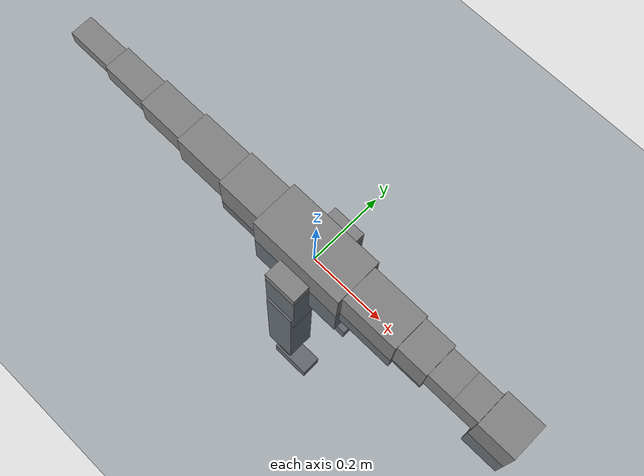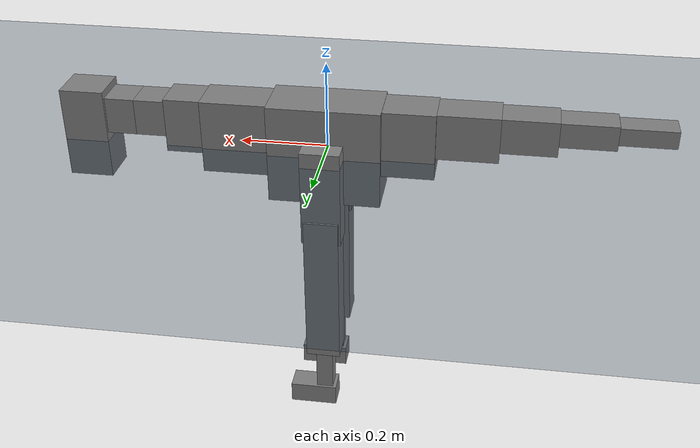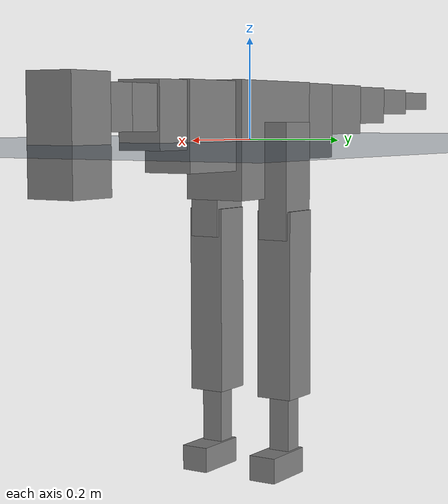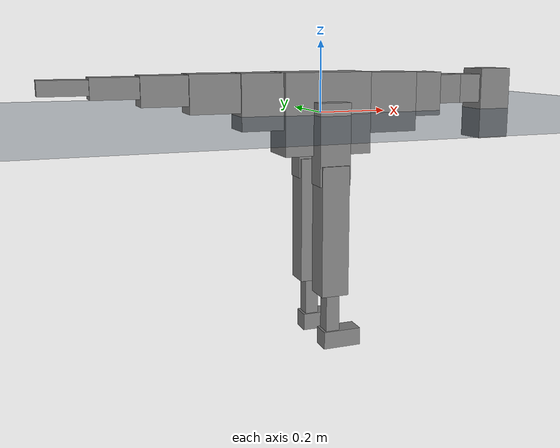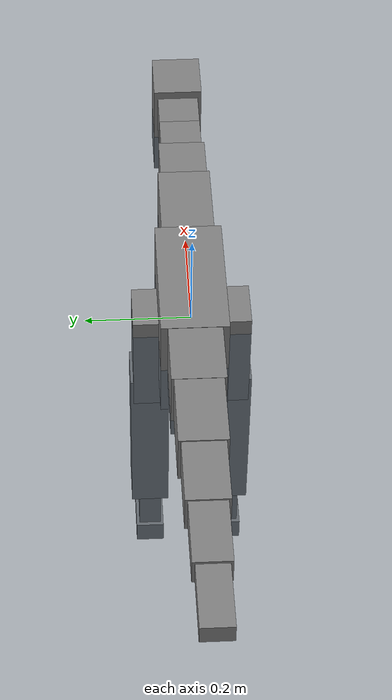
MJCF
<mujoco model="dog">

    <default>
        <joint armature="0.02" stiffness="1" damping="0.2" limited="true"/>
        <geom condim="3" friction="1 0.05 0.05" margin="0.01"/>
        <motor ctrllimited="true" ctrlrange="-1.0 1.0" forcelimited="true"/>
    </default>

    <compiler inertiafromgeom="true" angle="radian"/>

    <option timestep="0.016" iterations="50" tolerance="1e-10" solver="Newton" jacobian="dense" cone="pyramidal"/>

    <size nconmax="20000" njmax="60000" nstack="5000000"/>
    <visual>
        <map force="0.1" zfar="30"/>
        <rgba haze="0.15 0.25 0.35 1"/>
        <quality shadowsize="2048"/>
        <global offwidth="800" offheight="800"/>
    </visual>

    <asset>
        <texture type="skybox" builtin="gradient" rgb1="0.3 0.5 0.7" rgb2="0 0 0" width="512" height="512"/>
        <texture name="texplane" type="2d" builtin="checker" rgb1=".2 .3 .4" rgb2=".1 0.15 0.2" width="512" height="512"
                 mark="cross" markrgb=".8 .8 .8"/>
        <texture name="texgeom" type="cube" builtin="flat" mark="cross" width="127" height="1278" rgb1="0.8 0.6 0.4"
                 rgb2="0.8 0.6 0.4" markrgb="1 1 1" random="0.01"/>

        <material name="matplane" reflectance="0.3" texture="texplane" texrepeat="1 1" texuniform="true"/>
        <material name="matgeom" texture="texgeom" texuniform="true" rgba="0.8 0.6 .4 1"/>
    </asset>

    <worldbody>
        <geom name="floor" pos="0 0 0" size="0 0 .25" type="plane" material="matplane" condim="3"/>

        <light directional="false" diffuse=".2 .2 .2" specular="0 0 0" pos="0 0 5" dir="0 0 -1" castshadow="false"/>
        <light mode="targetbodycom" target="torso" directional="false" diffuse=".8 .8 .8" specular="0.3 0.3 0.3"
               pos="0 0 4.0" dir="0 0 -1"/>

        <body name="root" pos="0 0 0">
            <freejoint name="root_y"/>
            <geom type="box" size="0.1278 0.063 0.1147" density="2030"/>
            <body name="spine0" pos="0.1058 0 0.0777">
                <joint name="spine0_y" axis="0 1 0" range="-0.2 -0.1"/>
                <geom type="box" pos="0.0868 0 -0.05065" size="0.0868 0.05 0.085" density="1038"/>
                <body name="spine1" pos="0.1736 0 0">
                    <joint name="spine1_y" axis="0 1 0" range="-0.2 -0.1"/>
                    <geom type="box" pos="0.042 0 -0.03" size="0.0415 0.045 0.06285" density="1038"/>
                    <body name="spine2" pos="0.083 0 0">
                        <joint name="spine2_y" axis="0 1 0" range="-0.2 -0.1"/>
                        <geom type="box" pos="0.0319 0 -0.017" size="0.0394 0.04 0.0417" density="1038"/>
                        <body name="spine3" pos="0.0788 0 0">
                            <joint name="spine3_y" axis="0 1 0" range="-0.2  -0.1"/>
                            <geom type="box" pos="0.0319 0 -0.017" size="0.0394 0.04 0.0417" density="1538"/>
                            <body name="head" pos="0.0688 0 0">
                                <joint name="head_y" axis="0 1 0" range="-0.8  0"/>
                                <geom type="box" pos="0.041 0 -0.063" size="0.05 0.0475 0.1043" density="2508"/>
                            </body>
                        </body>
                    </body>
                </body>
            </body>
            <body name="tail0" pos="-0.1198 0 0.0777">
                <joint name="tail0_y" axis="0 1 0" range="-0.1 0"/>
                <geom type="box" pos="-0.048 0 -0.04125" size="0.0795 0.05 0.07765" density="809"/>
                <body name="tail1" pos="-0.1252 0 0">
                    <joint name="tail1_y" axis="0 1 0" range="-0.1 0"/>
                    <geom type="box" pos="-0.0571 0 -0.0168" size="0.0846 0.045 0.0527" density="841"/>
                    <body name="tail2" pos="-0.1252 0 0">
                        <joint name="tail2_y" axis="0 1 0" range="-0.1 0"/>
                        <geom type="box" pos="-0.0571 0 -0.007" size="0.0846 0.04 0.04045" density="456"/>
                        <body name="tail3" pos="-0.1252 0 0">
                            <joint name="tail3_y" axis="0 1 0" range="-0.1 0"/>
                            <geom type="box" pos="-0.0571 0 0.002" size="0.0846 0.035 0.0282" density="449"/>
                            <body name="tail4" pos="-0.1252 0 0">
                                <joint name="tail4_y" axis="0 1 0" range="-0.1 0"/>
                                <geom type="box" pos="-0.0571 0 0.005" size="0.0846 0.03 0.02" density="738"/>
                            </body>
                        </body>
                    </body>
                </body>
            </body>

            <body name="left_hip" pos="0 0.08 0">
                <joint name="left_hip_y" axis="0 1 0" range="-1.5 1"/>
                <geom type="box" pos="0 0 -0.0804" size="0.0451  0.0313  0.1144" density="1048"/>

                <body name="left_knee" pos="0  0  -0.1608">
                    <joint name="left_knee_y" axis="0 1 0" range="0 2.8"/>
                    <geom type="box" pos="0 0 -0.1634" size="0.0401  0.0370  0.1854" density="1513"/>

                    <body name="left_ankle" pos="0  0  -0.3267">
                        <joint name="left_ankle_y" axis="0 1 0" range="-3.14 0"/>
                        <geom type="box" pos="0 0 -0.0801" size="0.0199  0.0218  0.0878" density="1791"/>

                        <body name="left_toe_end" pos="0  0  -0.1602">
                            <joint name="left_toe_end_y" axis="0 1 0" range="-0.4 1"/>
                            <geom type="box" pos="0.0279  0  0.0050" size="0.0557  0.0279  0.0250" density="1388"/>
                        </body>
                    </body>
                </body>
            </body>

            <body name="right_hip" pos="0 -0.08 0">
                <joint name="right_hip_y" axis="0 1 0" range="-1.5 1"/>
                <geom type="box" pos="0 0 -0.0804" size="0.0451  0.0313  0.1144" density="1048"/>
                <body name="right_knee" pos="0  0  -0.1608">
                    <joint name="right_knee_y" axis="0 1 0" range="0 2.8"/>
                    <geom type="box" pos="0 0 -0.1634" size="0.0401  0.0370  0.1854" density="1513"/>
                    <body name="right_ankle" pos="0  0  -0.3267">
                        <joint name="right_ankle_y" axis="0 1 0" range="-3.14 0"/>
                        <geom type="box" pos="0 0 -0.0801" size="0.0199  0.0218  0.0878" density="1791"/>
                        <body name="right_toe_end" pos="0  0  -0.1602">
                            <joint name="right_toe_end_y" axis="0 1 0" range="-0.4 1"/>
                            <geom type="box" pos="0.0279  0  0.0050" size="0.0557  0.0279  0.0250" density="1388"/>
                        </body>
                    </body>
                </body>
            </body>
        </body>
    </worldbody>

    <actuator>
        <motor joint="spine0_y" forcerange="-150 150    "/>
        <motor joint="spine1_y" forcerange="-150 150    "/>
        <motor joint="spine2_y" forcerange="-150 150    "/>
        <motor joint="spine3_y" forcerange="-150 150    "/>
        <motor joint="head_y" forcerange="-150 150     "/>
        <motor joint="tail0_y" forcerange="-50 50    "/>
        <motor joint="tail1_y" forcerange="-50 50    "/>
        <motor joint="tail2_y" forcerange="-50 50    "/>
        <motor joint="tail3_y" forcerange="-50 50    "/>
        <motor joint="tail4_y" forcerange="-50 50    "/>
        <motor joint="left_hip_y" forcerange="-208.84 175.88"/>
        <motor joint="left_knee_y" forcerange="-257.95 235.05"/>
        <motor joint="left_ankle_y" forcerange="-145.03 113.78"/>
        <motor joint="left_toe_end_y" forcerange="-115.22 70.60"/>
        <motor joint="right_hip_y" forcerange="-208.84 175.88"/>
        <motor joint="right_knee_y" forcerange="-257.95 235.05"/>
        <motor joint="right_ankle_y" forcerange="-145.03 113.78"/>
        <motor joint="right_toe_end_y" forcerange="-115.22 70.60"/>
    </actuator>

</mujoco>
